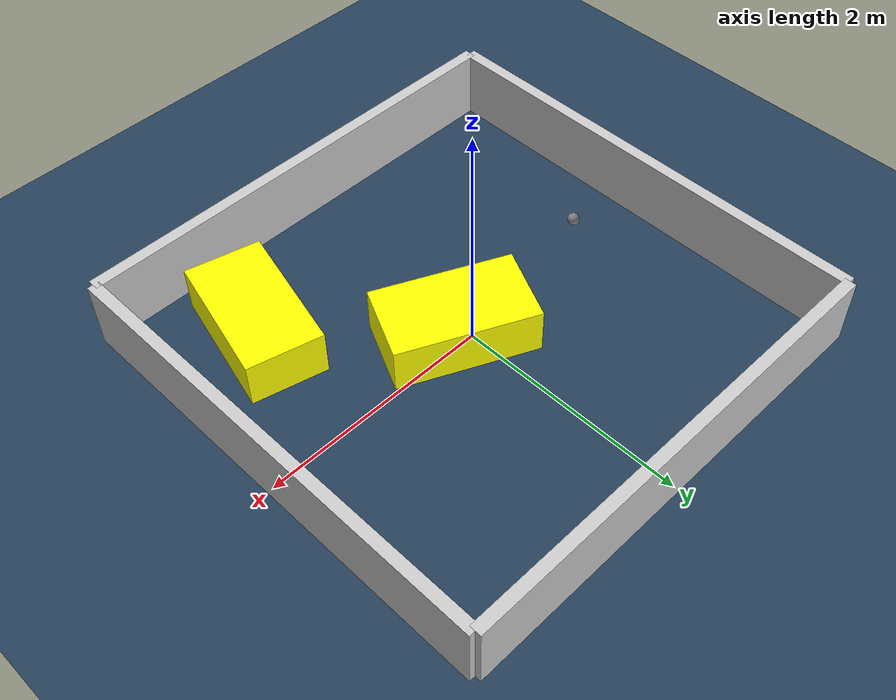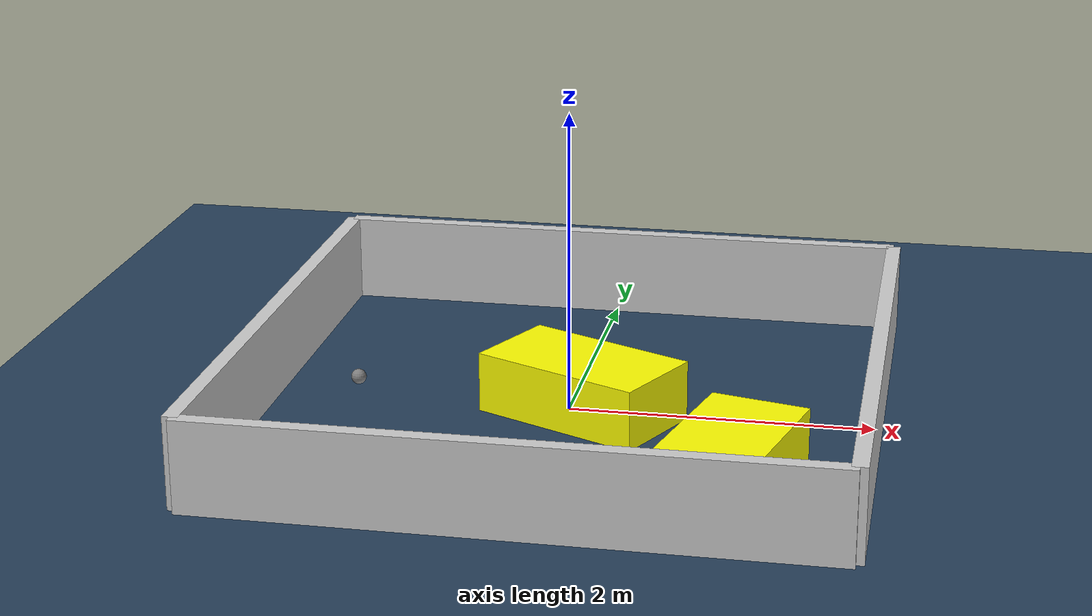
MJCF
<?xml version="1.0" ?>
<mujoco model="generated_environment">
  <option timestep="0.01" integrator="RK4" cone="elliptic"/>
  <default>
    <geom density="1"/>
  </default>
  <asset>
    <texture builtin="gradient" height="3072" rgb1="0.3 0.5 0.7" rgb2="0 0 0" type="skybox" width="512"/>
    <texture builtin="checker" height="300" mark="edge" markrgb="0.8 0.8 0.8" name="groundplane" rgb1="0.2 0.3 0.4" rgb2="0.1 0.2 0.3" type="2d" width="300"/>
    <material name="groundplane" reflectance="0.2" texrepeat="5 5" texture="groundplane" texuniform="true"/>
    <material name="robot" rgba="0.0 1.0 0.0 1"/>
  </asset>
  <worldbody>
    <light dir="0 0 -1" directional="true" pos="0 0 1.5"/>
    <geom condim="4" friction="1.0 0.005 0.001" material="groundplane" name="floor" size="0 0 0.05" type="plane"/>
    <body name="walls">
      <geom name="wall_1" condim="4" pos="-2.0 0.0 0.3" rgba="0.800000011920929 0.800000011920929 0.800000011920929 1.0" size="0.05 2.0 0.3" type="box"/>
      <geom name="wall_2" condim="4" pos="2.0 0.0 0.3" rgba="0.800000011920929 0.800000011920929 0.800000011920929 1.0" size="0.05 2.0 0.3" type="box"/>
      <geom name="wall_3" condim="4" pos="0.0 -2.0 0.3" rgba="0.800000011920929 0.800000011920929 0.800000011920929 1.0" size="2.0 0.05 0.3" type="box"/>
      <geom name="wall_4" condim="4" pos="0.0 2.0 0.3" rgba="0.800000011920929 0.800000011920929 0.800000011920929 1.0" size="2.0 0.05 0.3" type="box"/>
    </body>
    <body name="robot">
      <joint name="joint_x" type="slide" pos="0 0 0" axis="1 0 0"/>
      <joint name="joint_y" type="slide" pos="0 0 0" axis="0 1 0"/>
      <geom name="robot" type="sphere" pos="-1.3769538501334702 -0.17943475056264924 0.2" size="0.05" mass="5." friction="1.0 0.005 0.0001" condim="4"/>
      <site name="sensor_ball"/>
    </body>
    <body name="obstacle_1_movable">
      <geom name="obstacle_1_movable" condim="4" pos="0.10476251241501355 -0.08417549369043309 0.2" euler="0 0 154.7250812937941" friction="1.0 0.005 0.001" rgba="1 1 0 1" size="0.5945826545836104 0.3342515420242017 0.2" type="box" mass="0.1"/>
      <joint type="free"/>
    </body>
    <body name="obstacle_2_movable">
      <geom name="obstacle_2_movable" condim="4" pos="1.1779510213908329 -1.1759888476670857 0.2" euler="0 0 255.92699079522467" friction="1.0 0.005 0.001" rgba="1 1 0 1" size="0.5750833744931323 0.319874667310256 0.2" type="box" mass="0.1"/>
      <joint type="free"/>
    </body>
  </worldbody>
  <actuator>
    <motor name="actuator_x" joint="joint_x" gear="1" ctrlrange="-1 1"/>
    <motor name="actuator_y" joint="joint_y" gear="1" ctrlrange="-1 1"/>
  </actuator>
</mujoco>
